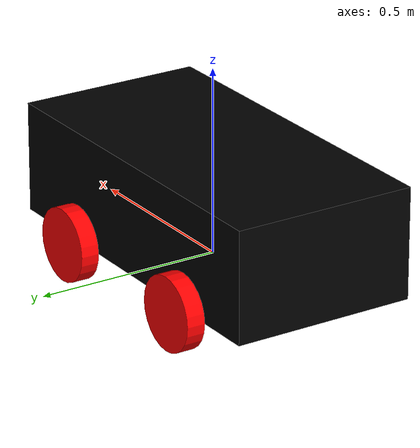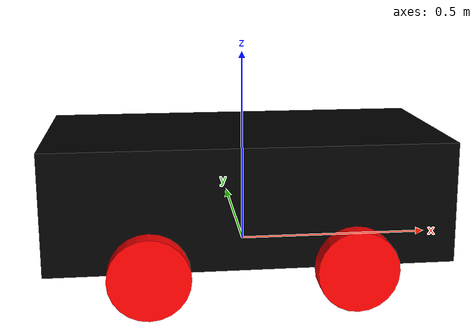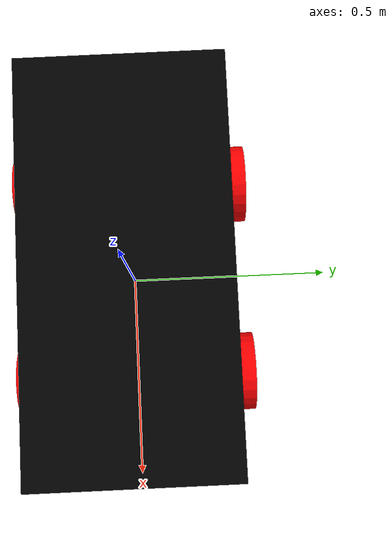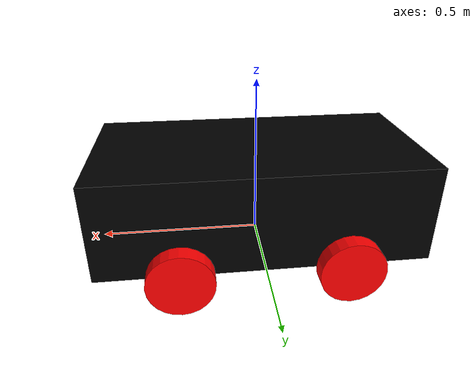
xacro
<?xml version="1.0"?>
<robot xmlns:xacro="http://www.ros.org/wiki/xacro"  name="robot">

    <xacro:include filename="inertial_macros.xacro"/>

    <!-- define colors that i will use in all xacro files-->
    <material name="white">
        <color rgba="1 1 1 1" />
    </material>

    <material name="orange">
        <color rgba="1 0.3 0.1 1" />
    </material>

    <material name="blue">
        <color rgba="0.2 0.2 1 1"/>
    </material>

    <material name="black">
        <color rgba="0 0 0 1" />
    </material>

    <material name="red">
        <color rgba="1 0 0 1"/>
    </material>

    <!-- start to make links-->
    <!-- base_link-->
    <link name="base_link">

    </link>

    <!-- Base_Footprint link-->

    <joint name="base_footprint_joint" type="fixed">
        <parent link="base_link"/>
        <child link="base_footprint"/>
        <origin xyz="0 0 0" rpy="0 0 0"/>
    </joint>

    <link name="base_footprint">
    </link>

    <!-- chassis_link-->
    <!-- i need the chassis_joint on the back of robot-->
    <joint name="chassis_joint" type="fixed">
        <parent link="base_link"/>
        <child link="chassis_link"/>
        <origin xyz="-0.5 0 0"/>
    </joint>

    <link name="chassis_link">
        <visual>
            <!-- we need the origin of chassis at the back of robot so shift the visual of chassis by half in x and z-->
            <origin xyz="0.5 0 0.15"/>
            <geometry>
                <!-- diemensions of our robot x y z-->
                <box size="1 0.5 0.3"/>
            </geometry>
            <material name="black"/>
        </visual>
        <!-- collsion contain same parameters in visual but without material -->
        <collision>
            <!-- we need the origin of chassis at the back of robot so shift the visual of chassis by half in x and z-->
            <origin xyz="0.5 0 0.15"/>
            <geometry>
                <!-- diemensions of our robot x y z-->
                <box size="1 0.5 0.3"/>
            </geometry>
        </collision>
        <xacro:inertial_box mass="0.5" x="1" y="0.5" z="0.3">
            <!-- origin must be the same origin in the visual not in the joint -->
            <origin xyz="0.5 0 0.15" rpy="0 0 0"/>
        </xacro:inertial_box>
    </link>

    <!-- gazebo tag here to define colors of the material on gazebo and not appear all
         material as a white color -->
    <gazebo reference="chassis_link">
        <material>Gazebo/Black</material>
    </gazebo>

    <!-- Wheels -->

    <!-- so when adjust to our robot i need to know
    -    centre of rotation to adjust the structure to it
    -    position of our wheels from base_link-->
    <!-- Left rear wheel link -->
    <joint name="left_rear_wheel_joint" type="continuous">
        <parent link="base_link"/>
        <child link="left_rear_wheel_link"/>
        <!-- we need z point to out of the robot so rotate in x -pi/2-->
        <origin xyz="-0.25 0.275 0" rpy="-${pi/2} 0 0"/>
        <!-- we need to specify axis of rotation, we want that to be positive around z-axis
             so anti-clockwise around z-->
        <axis xyz="0 0 1"/>
    </joint>

    <link name="left_rear_wheel_link">
        <visual>
            <geometry>
                <cylinder radius="0.1" length="0.05"/>
            </geometry>
            <material name="red"/>
        </visual>
        <collision>
            <geometry>
                <cylinder radius="0.1" length="0.05"/>
            </geometry>
        </collision>
        <xacro:inertial_cylinder mass="0.1" length="0.05" radius="0.1">
            <!-- if there no origin in the visual put it all zeros-->
            <origin xyz="0 0 0" rpy="0 0 0"/>
        </xacro:inertial_cylinder>
    </link>

    <!-- gazebo tag here to define colors of the material on gazebo and not appear all
     material as a white color -->
     <gazebo reference="left_rear_wheel_link">
        <material>Gazebo/Red</material>
    </gazebo>

    <!-- Left front wheel link -->
    <joint name="left_front_wheel_joint" type="continuous">
        <parent link="base_link"/>
        <child link="left_front_wheel_link"/>
        <!-- we need z point to out of the robot so rotate in x -pi/2-->
        <origin xyz="0.25 0.275 0" rpy="-${pi/2} 0 0"/>
        <!-- we need to specify axis of rotation, we want that to be positive around z-axis
             so anti-clockwise around z-->
        <axis xyz="0 0 1"/>
    </joint>

    <link name="left_front_wheel_link">
        <visual>
            <geometry>
                <cylinder radius="0.1" length="0.05"/>
            </geometry>
            <material name="red"/>
        </visual>
        <collision>
            <geometry>
                <cylinder radius="0.1" length="0.05"/>
            </geometry>
        </collision>
        <xacro:inertial_cylinder mass="0.1" length="0.05" radius="0.1">
            <!-- if there no origin in the visual put it all zeros-->
            <origin xyz="0 0 0" rpy="0 0 0"/>
        </xacro:inertial_cylinder>
    </link>

    <!-- gazebo tag here to define colors of the material on gazebo and not appear all
     material as a white color -->
     <gazebo reference="left_front_wheel_link">
        <material>Gazebo/Red</material>
    </gazebo>

    <!-- Right rear wheel link -->
    <joint name="right_rear_wheel_joint" type="continuous">
        <parent link="base_link"/>
        <child link="right_rear_wheel_link"/>
        <!-- we need z point to out of the robot so rotate in x pi/2-->
        <origin xyz="-0.25 -0.275 0" rpy="${pi/2} 0 0"/>
        <!-- we need to specify axis of rotation, we want that to be positive around z-axis
             so clockwise around z-->
        <axis xyz="0 0 -1"/>
    </joint>

    <link name="right_rear_wheel_link">
        <visual>
            <geometry>
                <cylinder radius="0.1" length="0.05"/>
            </geometry>
            <material name="red"/>
        </visual>
        <collision>
            <geometry>
                <cylinder radius="0.1" length="0.05"/>
            </geometry>
        </collision>
        <xacro:inertial_cylinder mass="0.1" length="0.05" radius="0.1">
            <!-- if there no origin in the visual put it all zeros-->
            <origin xyz="0 0 0" rpy="0 0 0"/>
        </xacro:inertial_cylinder>
    </link>

    <!-- gazebo tag here to define colors of the material on gazebo and not appear all
     material as a white color -->
     <gazebo reference="right_rear_wheel_link">
        <material>Gazebo/Red</material>
    </gazebo>

    <!-- Right front wheel link -->
    <joint name="right_front_wheel_joint" type="continuous">
        <parent link="base_link"/>
        <child link="right_front_wheel_link"/>
        <!-- we need z point to out of the robot so rotate in x pi/2-->
        <origin xyz="0.25 -0.275 0" rpy="${pi/2} 0 0"/>
        <!-- we need to specify axis of rotation, we want that to be positive around z-axis
             so clockwise around z-->
        <axis xyz="0 0 -1"/>
    </joint>

    <link name="right_front_wheel_link">
        <visual>
            <geometry>
                <cylinder radius="0.1" length="0.05"/>
            </geometry>
            <material name="red"/>
        </visual>
        <collision>
            <geometry>
                <cylinder radius="0.1" length="0.05"/>
            </geometry>
        </collision>
        <xacro:inertial_cylinder mass="0.1" length="0.05" radius="0.1">
            <!-- if there no origin in the visual put it all zeros-->
            <origin xyz="0 0 0" rpy="0 0 0"/>
        </xacro:inertial_cylinder>
    </link>

    <!-- gazebo tag here to define colors of the material on gazebo and not appear all
     material as a white color -->
     <gazebo reference="right_front_wheel_link">
        <material>Gazebo/Red</material>
    </gazebo>

</robot>
